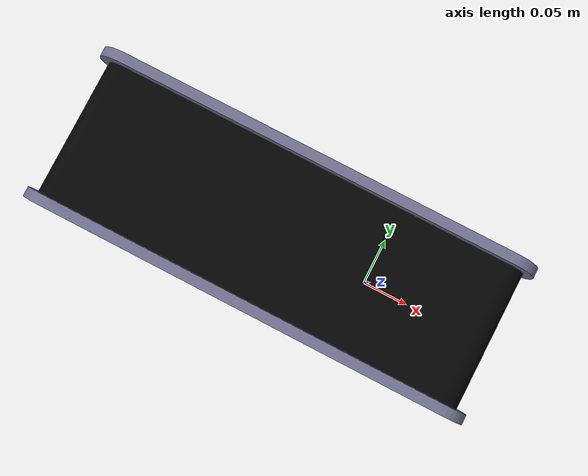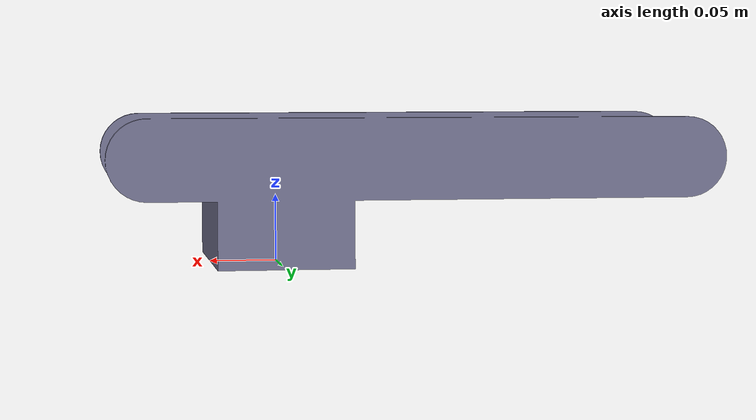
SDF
<?xml version="1.0" ?>
<sdf version="1.6">
  <model name="conveyor">
    <static>true</static>
    <link name="link">
    <collision name="collision">
        <geometry>
          <mesh>
            <uri>model://conveyor/meshes/conveyor.dae</uri>
          </mesh>
        </geometry>
      </collision>
      <visual name="visual">
        <geometry>
          <mesh>
            <uri>model://conveyor/meshes/conveyor.dae</uri>
          </mesh>
        </geometry>
      </visual>
    </link>
  </model>
</sdf>
